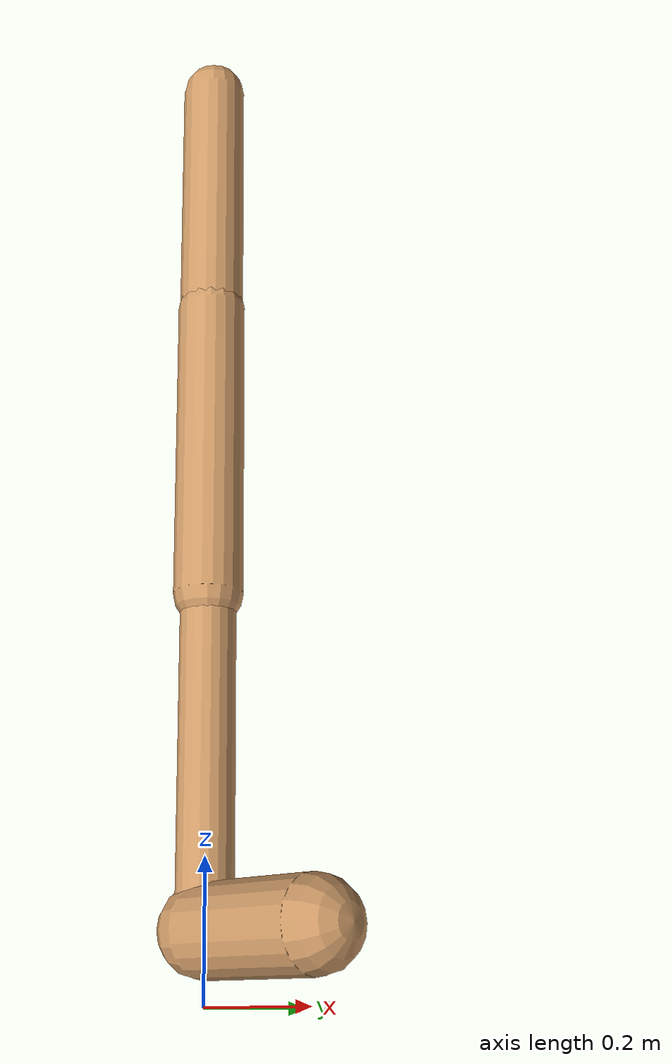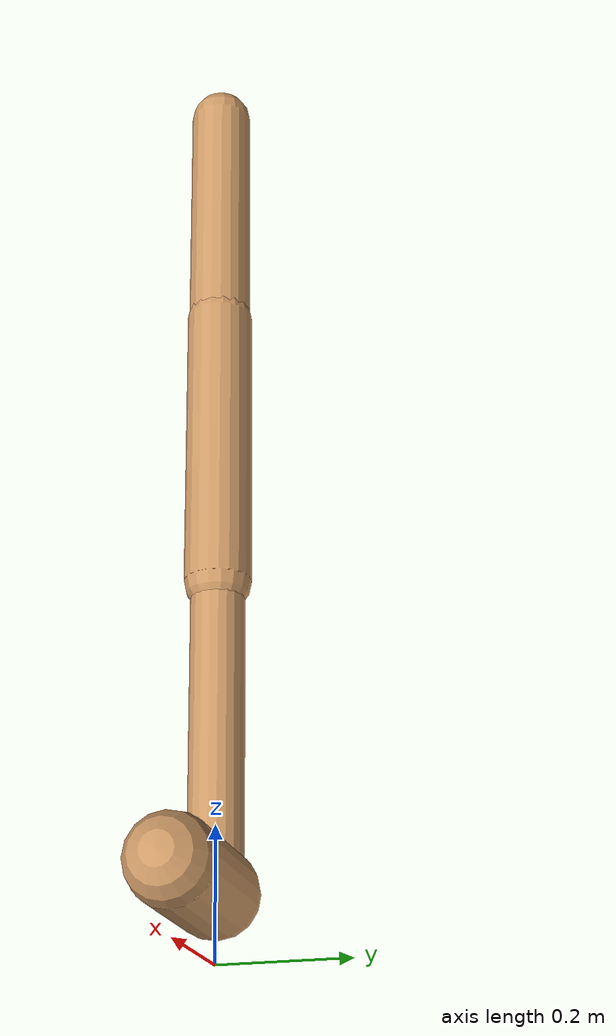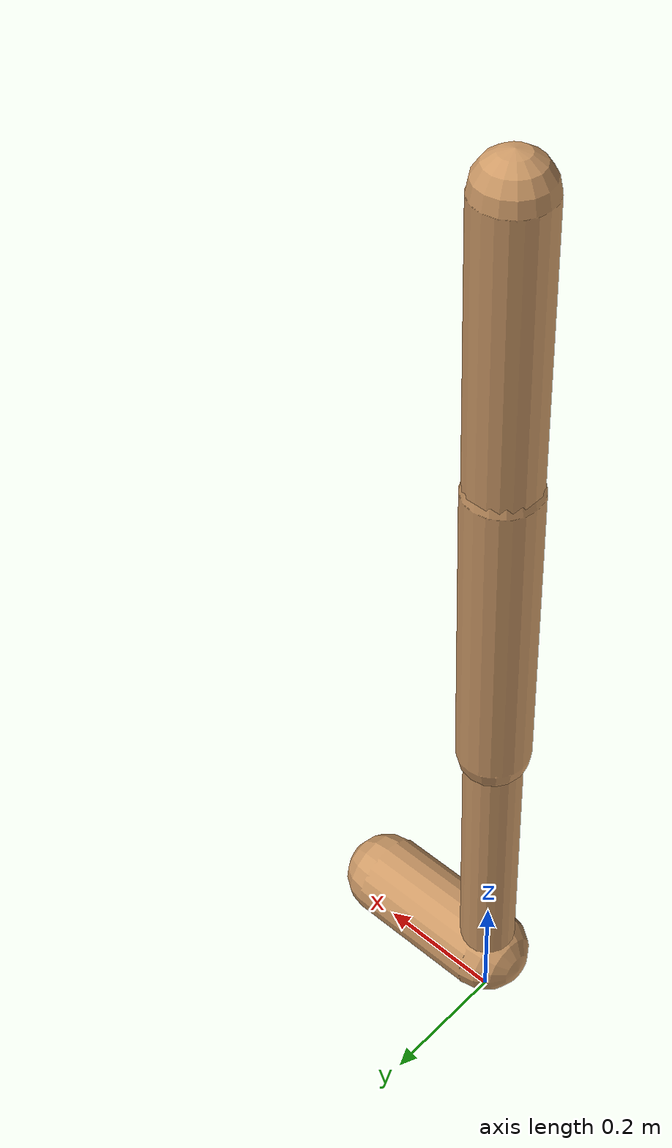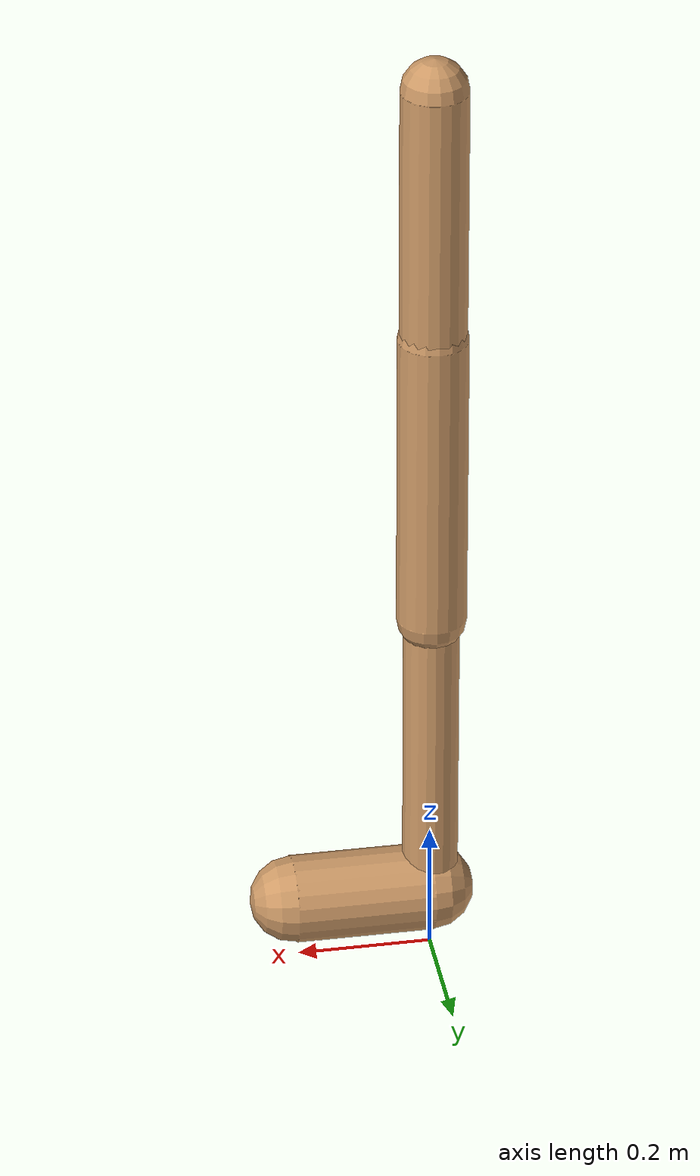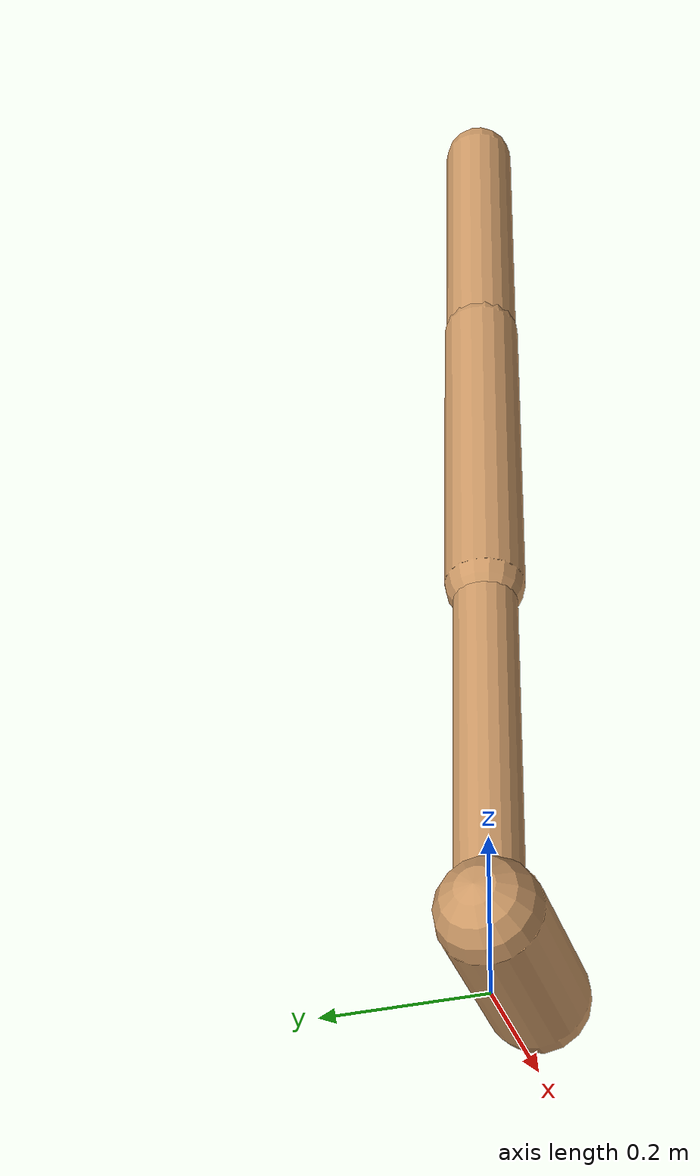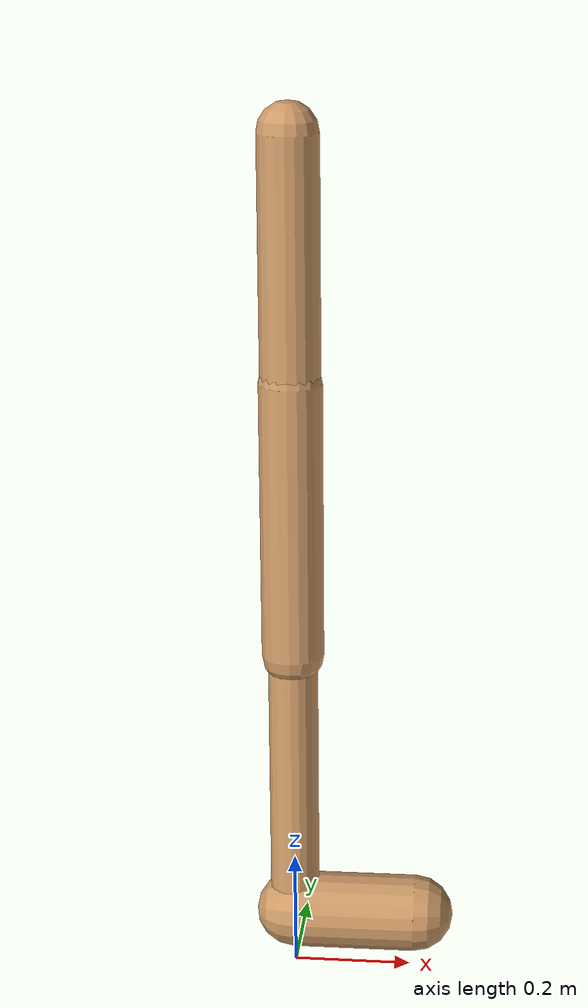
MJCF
<mujoco model="walker2d">
  <compiler angle="degree" coordinate="global" inertiafromgeom="true" />
  <default>
    <joint armature="0.01" damping=".1" limited="true" />
    <geom conaffinity="0" condim="3" contype="1" density="1000" friction="0.8 .1 .1" rgba="0.8 0.6 .4 1" />
  </default>
  <option integrator="RK4" timestep="0.002" />
  <worldbody>

    <body name="torso" pos="0 0 0.04153133955374077">
      <joint armature="0" axis="1 0 0" damping="0" limited="false" name="ignorex" pos="0 0 0" stiffness="0" type="slide" />
      <joint armature="0" axis="0 0 1" damping="0" limited="false" name="ignorez" pos="0 0 0" ref="1.25" stiffness="0" type="slide" />
      <joint armature="0" axis="0 1 0" damping="0" limited="false" name="ignorey" pos="0 0 0" stiffness="0" type="hinge" />
      <geom fromto="0 0 1.45 0 0 1.05" name="torso_geom" size="0.05002398440287077" type="capsule" />
      <body name="thigh">
        <joint axis="0 -1 0" name="thigh_joint" pos="0 0 1.05" range="-150 0" type="hinge" />
        <geom fromto="0.0 0.0 1.05 0.0 0.0 0.5803272602113859" name="thigh_geom" size="0.05241097957343045" type="capsule" />
        <body name="leg" pos="0.0 0.0 -0.019672739788614058">
          <joint axis="0 -1 0" name="leg_joint" pos="0 0 0.6" range="-150 0" type="hinge" />
          <geom fromto="0.0 0.0 0.6 0.0 0.0 0.07814140023487329" name="leg_geom" size="0.04192878365874436" type="capsule" />
          <body name="foot" pos="0.0 0.0 -0.02185859976512672">
            <joint axis="0 -1 0" name="foot_joint" pos="0 0 0.1" range="-45 45" type="hinge" />
            <geom fromto="-0.0 0.0 0.1 0.20845843387291493 0.0 0.1" name="foot_geom" size="0.06579033756379936" type="capsule" />
          </body>
        </body>
      </body>

      <body name="thigh_left">
        <joint axis="0 -1 0" name="thigh_left_joint" pos="0 0 1.05" range="-150 0" type="hinge" />
        <geom fromto="0.0 0.0 1.05 0.0 0.0 0.5803272602113859" name="thigh_left_geom" rgba=".7 .3 .6 1" size="0.05241097957343045" type="capsule" />
        <body name="leg_left" pos="0.0 0.0 -0.019672739788614058">
          <joint axis="0 -1 0" name="leg_left_joint" pos="0 0 0.6" range="-150 0" type="hinge" />
          <geom fromto="0.0 0.0 0.6 0.0 0.0 0.07814140023487329" name="leg_left_geom" rgba=".7 .3 .6 1" size="0.04192878365874436" type="capsule" />
          <body name="foot_left" pos="0.0 0.0 -0.02185859976512672">
            <joint axis="0 -1 0" name="foot_left_joint" pos="0 0 0.1" range="-45 45" type="hinge" />
            <geom fromto="-0.0 0.0 0.1 0.20845843387291493 0.0 0.1" name="foot_left_geom" rgba=".7 .3 .6 1" size="0.06579033756379936" type="capsule" />
          </body>
        </body>
      </body>
    </body>
  </worldbody>
  <actuator>

    <motor ctrllimited="true" ctrlrange="-1.0 1.0" gear="100" joint="thigh_joint" />
    <motor ctrllimited="true" ctrlrange="-1.0 1.0" gear="100" joint="leg_joint" />
    <motor ctrllimited="true" ctrlrange="-1.0 1.0" gear="100" joint="foot_joint" />
    <motor ctrllimited="true" ctrlrange="-1.0 1.0" gear="100" joint="thigh_left_joint" />
    <motor ctrllimited="true" ctrlrange="-1.0 1.0" gear="100" joint="leg_left_joint" />
    <motor ctrllimited="true" ctrlrange="-1.0 1.0" gear="100" joint="foot_left_joint" />

  </actuator>
</mujoco>
